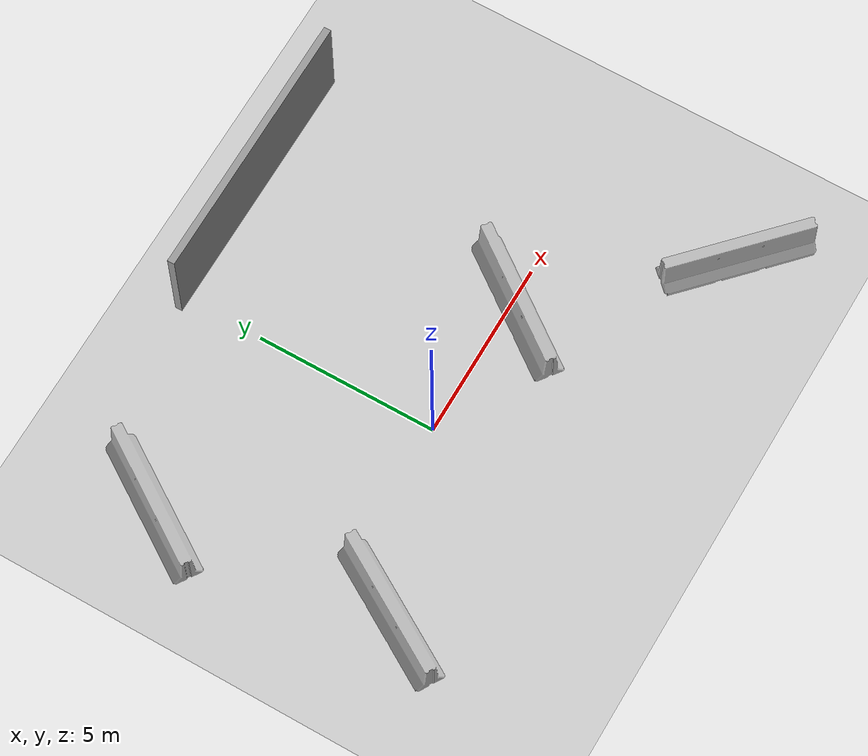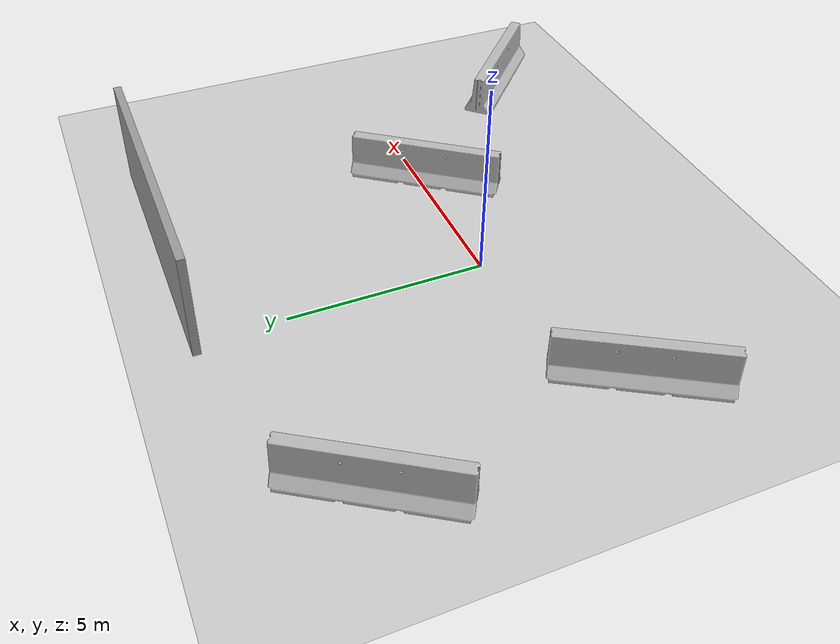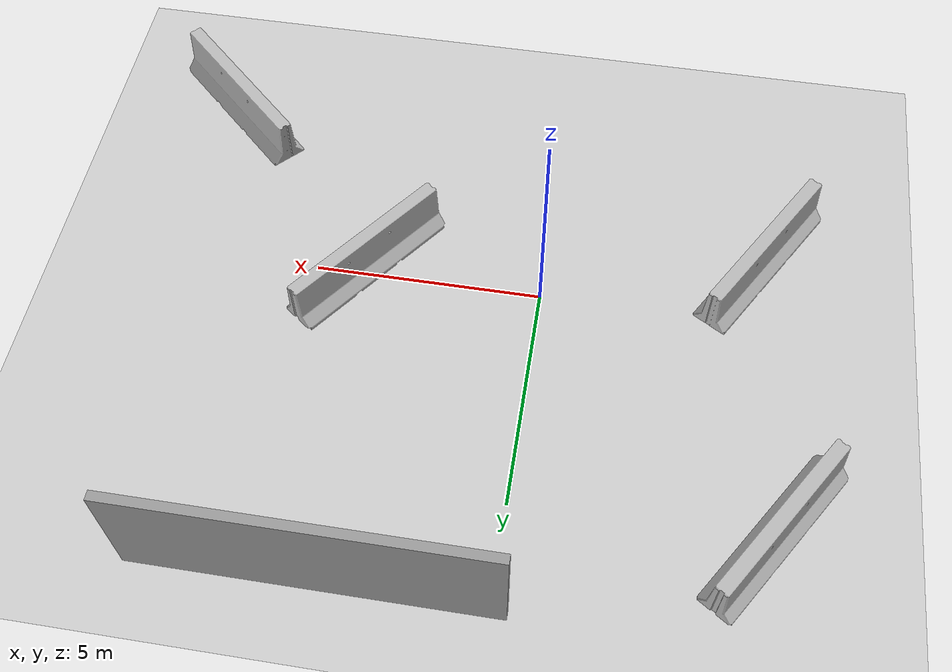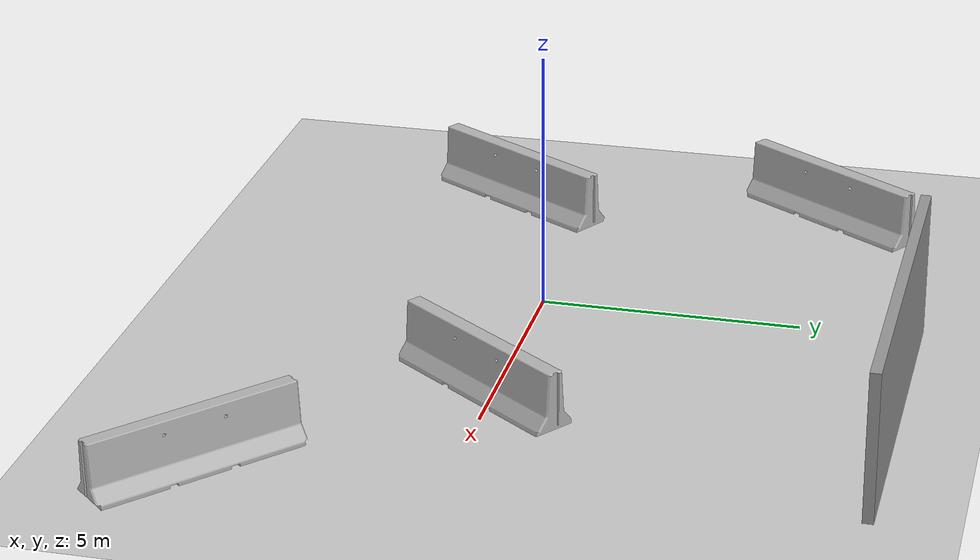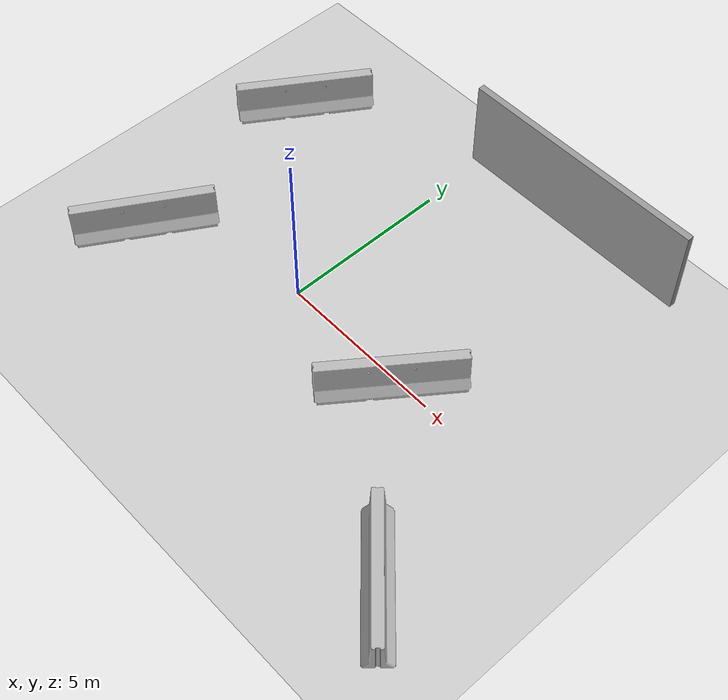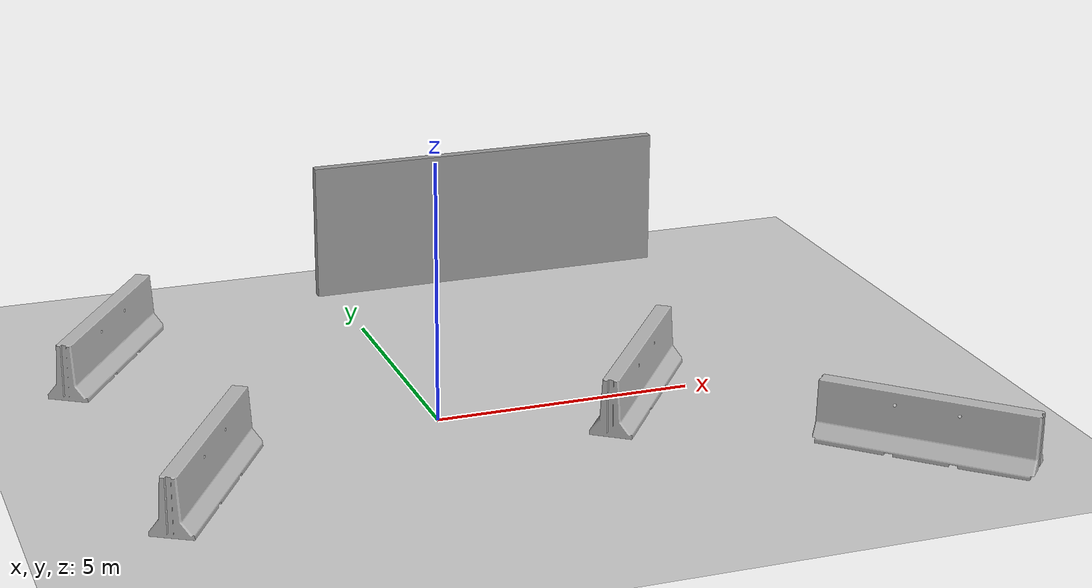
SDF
<sdf version="1.6">
 <world name="default">
  <light name="sun" type="directional">
   <pose>0 0 10 0 -0 0</pose>
   <diffuse>0.8 0.8 0.8 1</diffuse>
   <specular>0.2 0.2 0.2 1</specular>
   <attenuation>
    <range>1000</range>
    <constant>0.9</constant>
    <linear>0.01</linear>
    <quadratic>0.001</quadratic>
   </attenuation>
   <direction>-0.5 0.1 -0.9</direction>
  </light>
  <model name="ground_plane">
   <static>1</static>
   <link name="link">
    <collision name="collision">
     <geometry><plane><normal>0 0 1</normal><size>100 100</size></plane></geometry>
     <surface><friction><ode><mu>100</mu><mu2>50</mu2></ode></friction></surface>
    </collision>
    <visual name="visual">
     <cast_shadows>0</cast_shadows>
     <geometry><plane><normal>0 0 1</normal><size>100 100</size></plane></geometry>
     <material>
      <script><uri>file://media/materials/scripts/gazebo.material</uri><name>Gazebo/Grey</name></script>
     </material>
    </visual>
    <velocity_decay><linear>0</linear><angular>0</angular></velocity_decay>
   </link>
  </model>
  <gravity>0 0 -9.8</gravity>
  <magnetic_field>6e-06 2.3e-05 -4.2e-05</magnetic_field>
  <atmosphere type="adiabatic"/>
  <physics name="default_physics" default="0" type="ode">
   <max_step_size>0.001</max_step_size>
   <real_time_factor>1</real_time_factor>
   <real_time_update_rate>1000</real_time_update_rate>
  </physics>
  <scene><ambient>0.4 0.4 0.4 1</ambient><background>0.7 0.7 0.7 1</background><shadows>1</shadows></scene>
  <spherical_coordinates>
   <surface_model>EARTH_WGS84</surface_model>
   <latitude_deg>0</latitude_deg>
   <longitude_deg>0</longitude_deg>
   <elevation>0</elevation>
   <heading_deg>0</heading_deg>
  </spherical_coordinates>
  <model name="jersey_barrier">
   <static>1</static>
   <link name="link">
    <visual name="visual">
     <geometry><mesh><uri>model://jersey_barrier/meshes/jersey_barrier.dae</uri></mesh></geometry>
    </visual>
    <collision name="upright">
     <pose>0 0 0.5715 0 -0 0</pose>
     <geometry><box><size>4.06542 0.3063 1.143</size></box></geometry>
    </collision>
    <collision name="base">
     <pose>0 0 0.032258 0 -0 0</pose>
     <geometry><box><size>4.06542 0.8107 0.064516</size></box></geometry>
    </collision>
    <collision name="base2">
     <pose>0 0 0.1 0 -0 0</pose>
     <geometry><box><size>4.06542 0.65 0.1</size></box></geometry>
    </collision>
    <collision name="base3">
     <pose>0 0 0.2 0 -0 0</pose>
     <geometry><box><size>4.06542 0.5 0.1</size></box></geometry>
    </collision>
    <collision name="left-angle">
     <pose>0 -0.224 0.2401 0.9 -0 0</pose>
     <geometry><box><size>4.06542 0.5 0.064516</size></box></geometry>
    </collision>
    <collision name="right-angle">
     <pose>0 0.224 0.2401 -0.9 0 0</pose>
     <geometry><box><size>4.06542 0.5 0.064516</size></box></geometry>
    </collision>
   </link>
   <pose>7.85339 -4.32934 -0.003696 0.014701 0.013628 -0.747489</pose>
  </model>
  <model name="jersey_barrier_0">
   <static>1</static>
   <link name="link">
    <visual name="visual">
     <geometry><mesh><uri>model://jersey_barrier/meshes/jersey_barrier.dae</uri></mesh></geometry>
    </visual>
    <collision name="upright">
     <pose>0 0 0.5715 0 -0 0</pose>
     <geometry><box><size>4.06542 0.3063 1.143</size></box></geometry>
    </collision>
    <collision name="base">
     <pose>0 0 0.032258 0 -0 0</pose>
     <geometry><box><size>4.06542 0.8107 0.064516</size></box></geometry>
    </collision>
    <collision name="base2">
     <pose>0 0 0.1 0 -0 0</pose>
     <geometry><box><size>4.06542 0.65 0.1</size></box></geometry>
    </collision>
    <collision name="base3">
     <pose>0 0 0.2 0 -0 0</pose>
     <geometry><box><size>4.06542 0.5 0.1</size></box></geometry>
    </collision>
    <collision name="left-angle">
     <pose>0 -0.224 0.2401 0.9 -0 0</pose>
     <geometry><box><size>4.06542 0.5 0.064516</size></box></geometry>
    </collision>
    <collision name="right-angle">
     <pose>0 0.224 0.2401 -0.9 0 0</pose>
     <geometry><box><size>4.06542 0.5 0.064516</size></box></geometry>
    </collision>
   </link>
   <pose>3.91774 -0.200303 0 0 -0 0.932352</pose>
  </model>
  <model name="jersey_barrier_1">
   <static>1</static>
   <link name="link">
    <visual name="visual">
     <geometry><mesh><uri>model://jersey_barrier/meshes/jersey_barrier.dae</uri></mesh></geometry>
    </visual>
    <collision name="upright">
     <pose>0 0 0.5715 0 -0 0</pose>
     <geometry><box><size>4.06542 0.3063 1.143</size></box></geometry>
    </collision>
    <collision name="base">
     <pose>0 0 0.032258 0 -0 0</pose>
     <geometry><box><size>4.06542 0.8107 0.064516</size></box></geometry>
    </collision>
    <collision name="base2">
     <pose>0 0 0.1 0 -0 0</pose>
     <geometry><box><size>4.06542 0.65 0.1</size></box></geometry>
    </collision>
    <collision name="base3">
     <pose>0 0 0.2 0 -0 0</pose>
     <geometry><box><size>4.06542 0.5 0.1</size></box></geometry>
    </collision>
    <collision name="left-angle">
     <pose>0 -0.224 0.2401 0.9 -0 0</pose>
     <geometry><box><size>4.06542 0.5 0.064516</size></box></geometry>
    </collision>
    <collision name="right-angle">
     <pose>0 0.224 0.2401 -0.9 0 0</pose>
     <geometry><box><size>4.06542 0.5 0.064516</size></box></geometry>
    </collision>
   </link>
   <pose>-5.25672 4.86584 0 0 0 -2.14669</pose>
  </model>
  <model name="jersey_barrier_2">
   <static>1</static>
   <link name="link">
    <visual name="visual">
     <geometry><mesh><uri>model://jersey_barrier/meshes/jersey_barrier.dae</uri></mesh></geometry>
    </visual>
    <collision name="upright">
     <pose>0 0 0.5715 0 -0 0</pose>
     <geometry><box><size>4.06542 0.3063 1.143</size></box></geometry>
    </collision>
    <collision name="base">
     <pose>0 0 0.032258 0 -0 0</pose>
     <geometry><box><size>4.06542 0.8107 0.064516</size></box></geometry>
    </collision>
    <collision name="base2">
     <pose>0 0 0.1 0 -0 0</pose>
     <geometry><box><size>4.06542 0.65 0.1</size></box></geometry>
    </collision>
    <collision name="base3">
     <pose>0 0 0.2 0 -0 0</pose>
     <geometry><box><size>4.06542 0.5 0.1</size></box></geometry>
    </collision>
    <collision name="left-angle">
     <pose>0 -0.224 0.2401 0.9 -0 0</pose>
     <geometry><box><size>4.06542 0.5 0.064516</size></box></geometry>
    </collision>
    <collision name="right-angle">
     <pose>0 0.224 0.2401 -0.9 0 0</pose>
     <geometry><box><size>4.06542 0.5 0.064516</size></box></geometry>
    </collision>
   </link>
   <pose>-4.71696 -1.56791 0 0 -0 1.03359</pose>
  </model>
  <model name="grey_wall">
   <static>1</static>
   <link name="link">
    <pose>0 0 1.4 0 -0 0</pose>
    <collision name="collision"><geometry><box><size>7.5 0.2 2.8</size></box></geometry></collision>
    <visual name="visual">
     <cast_shadows>0</cast_shadows>
     <geometry><box><size>7.5 0.2 2.8</size></box></geometry>
     <material>
      <script>
       <uri>model://grey_wall/materials/scripts</uri>
       <uri>model://grey_wall/materials/textures</uri>
       <name>vrc/grey_wall</name>
      </script>
     </material>
    </visual>
   </link>
   <pose>3.39843 7.20345 0 0 -0 0</pose>
  </model>
 </world>
</sdf>
